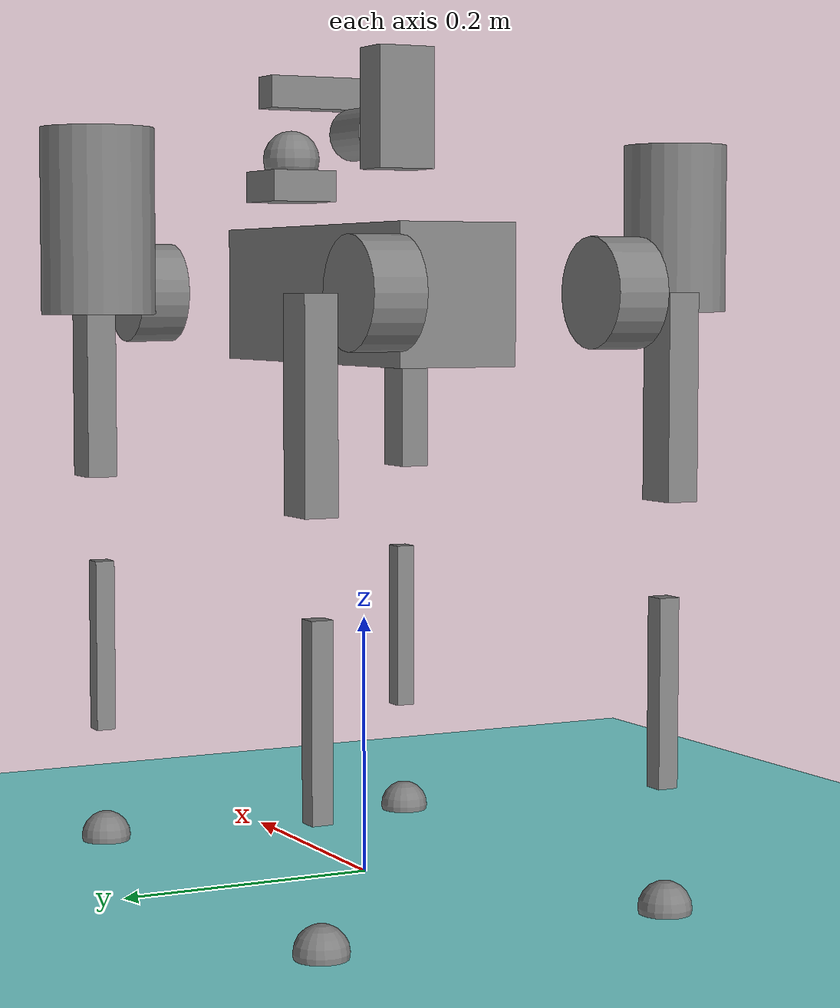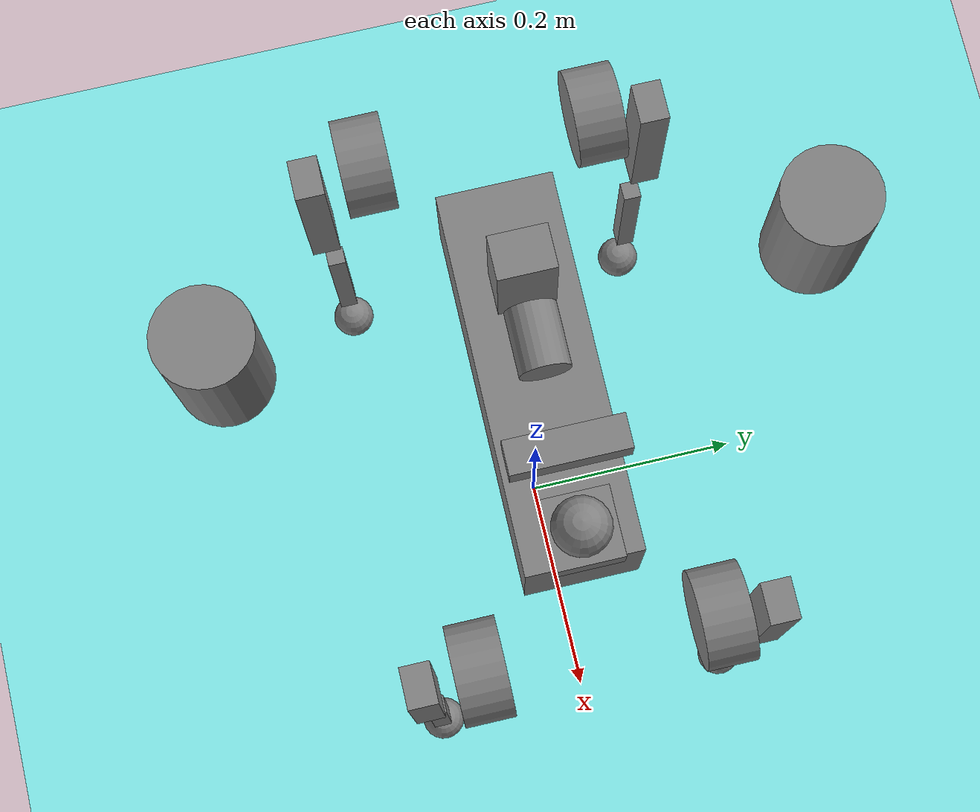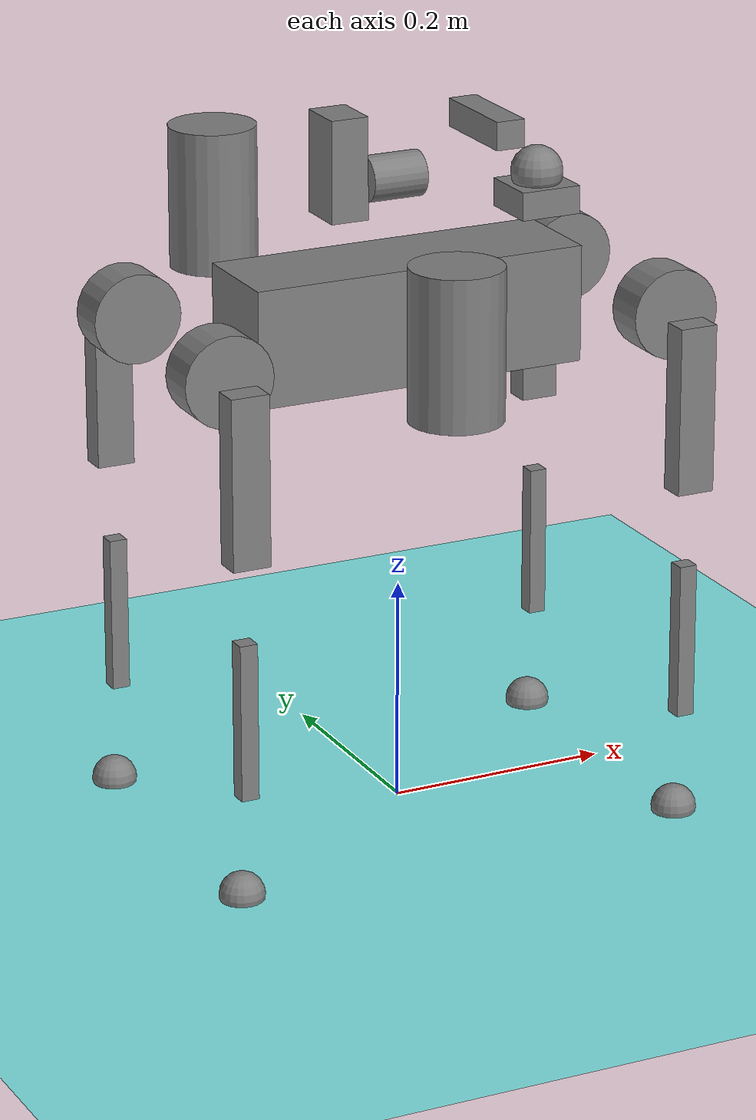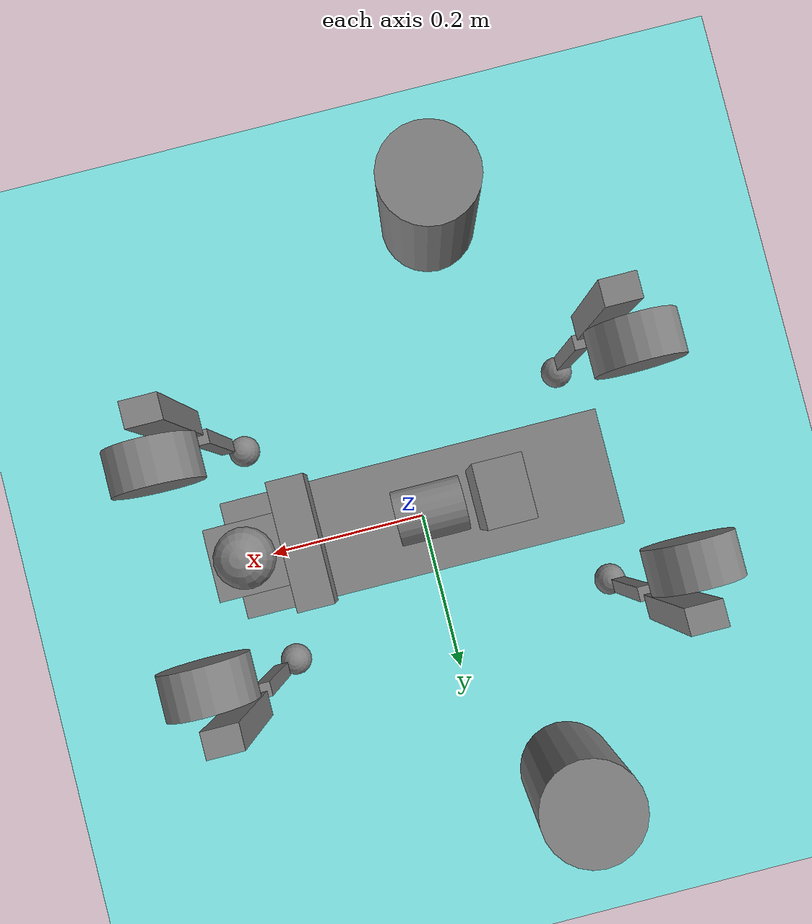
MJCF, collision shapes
<?xml version="1.0" ?>
<mujoco model="dog_t">
  <compiler angle="radian" meshdir="../meshes/"/>
  <size njmax="500" nconmax="100"/>
  <option gravity="0 0 -9.806" iterations="50" solver="Newton" timestep="0.005"/>
  <default>
    <geom contype="1" conaffinity="1" friction="0.6 0.3 0.3" margin="0.001" group="0"/>
    <light castshadow="false" diffuse="1 1 1"/>
    <joint damping="0.01" armature="0.01" frictionloss="0.2"/>
    <camera fovy="60"/>
  </default>
  <asset>
    <texture type="skybox" builtin="gradient" rgb1="1.0 1.0 1.0" rgb2="0.6 0.8 1.0" width="512" height="512"/>
    <texture name="plane" type="2d" builtin="flat" rgb1="1 1 1" rgb2="1 1 1" width="512" height="512" mark="cross" markrgb="0 0 0"/>
    <material name="plane" reflectance="0.0" texture="plane" texrepeat="3 3" texuniform="true"/>
    <mesh name="base" file="base.STL"/>
    <mesh name="imu" file="imu.STL"/>
    <mesh name="radar" file="radar.STL"/>
    <mesh name="camera" file="camera.STL"/>
    <mesh name="pump" file="pump.STL"/>
    <mesh name="FL_hip" file="FL_hip.STL"/>
    <mesh name="FL_thigh" file="FL_thigh.STL"/>
    <mesh name="FL_calf" file="FL_calf.STL"/>
    <mesh name="FL_foot" file="FL_foot.STL"/>
    <mesh name="FR_hip" file="FR_hip.STL"/>
    <mesh name="FR_thigh" file="FR_thigh.STL"/>
    <mesh name="FR_calf" file="FR_calf.STL"/>
    <mesh name="FR_foot" file="FR_foot.STL"/>
    <mesh name="RR_hip" file="RR_hip.STL"/>
    <mesh name="RR_thigh" file="RR_thigh.STL"/>
    <mesh name="RR_calf" file="RR_calf.STL"/>
    <mesh name="RR_foot" file="RR_foot.STL"/>
    <mesh name="RL_hip" file="RL_hip.STL"/>
    <mesh name="RL_thigh" file="RL_thigh.STL"/>
    <mesh name="RL_calf" file="RL_calf.STL"/>
    <mesh name="RL_foot" file="RL_foot.STL"/>
  </asset>
  <visual>
    <rgba com="0.502 1.0 0 0.5" contactforce="0.98 0.4 0.4 0.7" contactpoint="1.0 1.0 0.6 0.4"/>
    <scale com="0.2" forcewidth="0.035" contactwidth="0.10" contactheight="0.04"/>
  </visual>
  <worldbody>
    <light directional="true" diffuse=".8 .8 .8" pos="0 0 10" dir="0 0 -10"/>
    <camera name="track" mode="trackcom" pos="0 -1.3 1.6" xyaxes="1 0 0 0 0.707 0.707"/>
    <geom name="floor" type="plane" conaffinity="1" condim="3" contype="1" rgba="0.5 0.9 0.9 0.1" material="plane" pos="0 0 0" size="0 0 1"/>
    <body name="base" pos="0 0 0.45">
      <joint type="free"/>
      <inertial pos="-0.00291826 8.3099e-06 0.00190096" mass="5.0" diaginertia="0.008287596317455301 0.026002970244409212 0.030394342292371222"/>
      <geom type="mesh" mesh="base" contype="0" conaffinity="0" group="1" rgba="0.10196 0.10196 0.10196 1"/>
      <geom type="box" size="0.1531 0.04675 0.052" rgba="0.5 0.5 0.5 0"/>
      <body name="imu" pos="0.057561 -0.0015639 -0.045474">
        <inertial pos="-0.000268185 1.39561e-05 -4.63275e-07" mass="0.0103267107406631" diaginertia="1.20259330249884E-06 6.35828771011343E-07 1.69450816786057E-06"/>
        <geom type="mesh" mesh="imu" contype="0" conaffinity="0" group="1" rgba="0 0 1 1"/>
      </body>
      <body name="radar" pos="0.1335 0 0.12212">
        <inertial pos="1.98147e-05 0.000180551 -0.030189" mass="0.4" diaginertia="0.00013831122039981267 0.00012001440188189757 0.00021192430563791596"/>
        <geom type="mesh" mesh="radar" contype="0" conaffinity="0" group="1" rgba="0.69804 0.69804 0.69804 1"/>
        <geom type="box" size="0.0275 0.0275 0.0125" pos="0 0 -0.035" rgba="0.5 0.5 0.5 0"/>
        <geom type="sphere" size="0.023" pos="0 0 -0.013" rgba="0.5 0.5 0.5 0"/>
      </body>
      <body name="camera" pos="0.0839967 -0.000205832 0.16132">
        <inertial pos="-0.0027069 1.9846e-05 -0.0145675" mass="0.151728648619625" diaginertia="0.000162119144800329 7.72798730028196E-05 9.70134936308606E-05"/>
        <geom type="mesh" mesh="camera" contype="0" conaffinity="0" group="1" rgba="0.69804 0.69804 0.69804 1"/>
        <geom type="box" size="0.013 0.045 0.0125" pos="0 0 -0.003" rgba="0.5 0.5 0.5 0"/>
      </body>
      <body name="pump" pos="-0.026003 0 0.09732">
        <inertial pos="-0.017674 3.67607e-05 -0.0108755" mass="0.831139054175458" diaginertia="0.000397296302420083 0.000356958676570571 0.000457901643271839"/>
        <geom type="mesh" mesh="pump" contype="0" conaffinity="0" group="1" rgba="1 1 1 1"/>
        <geom type="cylinder" size="0.02 0.025" pos="0.02 0 0.025" quat="0.707105 0 0.707108 0" rgba="0.5 0.5 0.5 0"/>
        <geom type="box" size="0.017 0.0225 0.045" pos="-0.03 0 0.041" rgba="0.5 0.5 0.5 0"/>
        <geom type="cylinder" size="0.04 0.065" pos="-0.04 0.24 -0.046" quat="0.707105 0 0 0.707108" rgba="0.5 0.5 0.5 0"/>
        <geom type="cylinder" size="0.04 0.065" pos="-0.04 -0.24 -0.046" quat="0.707105 0 0 0.707108" rgba="0.5 0.5 0.5 0"/>
      </body>
      <body name="FL_hip" pos="0.208697 0.05025 0.00132006">
        <joint name="FL_hip_joint" pos="0 0 0" axis="-1 0 0" range="-1.05 1.05" actuatorfrcrange="-17.0 17.0"/>
        <inertial pos="-0.010697 -0.0033174 0" mass="0.33292" diaginertia="0.0001789 0.0003417 0.00025417"/>
        <geom type="mesh" mesh="FL_hip" contype="0" conaffinity="0" group="1" rgba="0.79216 0.81961 0.93333 1"/>
        <geom type="cylinder" size="0.04 0.02" pos="0 0.045 0" quat="0.707105 0.707108 0 0" rgba="0.5 0.5 0.5 0"/>
        <body name="FL_thigh" pos="0 0.093 0">
          <joint name="FL_thigh_joint" pos="0 0 0" axis="0 -1 0" range="-1.57 3.49" actuatorfrcrange="-17.0 17.0"/>
          <inertial pos="-0.0069171 -0.014196 -0.040905" mass="1.5467" diaginertia="0.0064369 0.0062486 0.0014778"/>
          <geom type="mesh" mesh="FL_thigh" contype="0" conaffinity="0" group="1" rgba="0.79216 0.81961 0.93333 1"/>
          <geom type="box" size="0.075 0.01225 0.017" pos="0 0 -0.075" quat="0.707105 0 0.707108 0" rgba="0.5 0.5 0.5 0"/>
          <body name="FL_calf" pos="0 -0.0045 -0.219999">
            <joint name="FL_calf_joint" pos="0 0 0" axis="0 1 0" range="-2.72 -1.2" actuatorfrcrange="-25.5 25.5"/>
            <inertial pos="0.012446 0 -0.11689" mass="0.1266" diaginertia="0.00089879 0.0009089 1.8028E-05"/>
            <geom type="mesh" mesh="FL_calf" contype="0" conaffinity="0" group="1" rgba="0.79216 0.81961 0.93333 1"/>
            <geom type="box" size="0.07 0.008 0.008" pos="0 0 -0.07" quat="0.707105 0 0.707108 0" rgba="0.5 0.5 0.5 0"/>
            <body name="FL_foot" pos="-0.00528282 0 -0.228226">
              <inertial pos="0 0 0" mass="0.03385" diaginertia="4.3616E-06 4.8375E-06 5.3891E-06"/>
              <geom type="mesh" mesh="FL_foot" contype="0" conaffinity="0" group="1" rgba="0.69804 0.69804 0.69804 1"/>
              <geom type="sphere" size="0.02" rgba="0.5 0.5 0.5 0"/>
            </body>
          </body>
        </body>
      </body>
      <body name="FR_hip" pos="0.208697 -0.05025 0.00132006">
        <joint name="FR_hip_joint" pos="0 0 0" axis="-1 0 0" range="-1.05 1.05" actuatorfrcrange="-17.0 17.0"/>
        <inertial pos="-0.010697 0.0033174 0" mass="0.33292" diaginertia="0.0001789 0.0003417 0.00025417"/>
        <geom type="mesh" mesh="FR_hip" contype="0" conaffinity="0" group="1" rgba="0.79216 0.81961 0.93333 1"/>
        <geom type="cylinder" size="0.04 0.02" pos="0 -0.045 0" quat="0.707105 0.707108 0 0" rgba="0.5 0.5 0.5 0"/>
        <body name="FR_thigh" pos="0 -0.093 0">
          <joint name="FR_thigh_joint" pos="0 0 0" axis="0 1 0" range="-1.57 3.49" actuatorfrcrange="-17.0 17.0"/>
          <inertial pos="-0.0069171 0.014196 -0.040905" mass="1.5467" diaginertia="0.0064369 0.0062486 0.0014778"/>
          <geom type="mesh" mesh="FR_thigh" contype="0" conaffinity="0" group="1" pos="0 0.093 0" rgba="0.79216 0.81961 0.93333 1"/>
          <geom type="box" size="0.075 0.01225 0.017" pos="0 0 -0.075" quat="0.707105 0 0.707108 0" rgba="0.5 0.5 0.5 0"/>
          <body name="FR_calf" pos="0 0.0045 -0.22">
            <joint name="FR_calf_joint" pos="0 0 0" axis="0 -1 0" range="1.2 2.72" actuatorfrcrange="-25.5 25.5"/>
            <inertial pos="0.012446 0 -0.11689" mass="0.1266" diaginertia="0.00089879 0.0009089 1.8028E-05"/>
            <geom type="mesh" mesh="FR_calf" contype="0" conaffinity="0" group="1" rgba="0.79216 0.81961 0.93333 1"/>
            <geom type="box" size="0.07 0.008 0.008" pos="0 0 -0.07" quat="0.707105 0 0.707108 0" rgba="0.5 0.5 0.5 0"/>
            <body name="FR_foot" pos="-0.00528282 0 -0.228226">
              <inertial pos="0 0 0" mass="0.03385" diaginertia="4.3616E-06 4.8375E-06 5.3891E-06"/>
              <geom type="mesh" mesh="FR_foot" contype="0" conaffinity="0" group="1" rgba="0.69804 0.69804 0.69804 1"/>
              <geom type="sphere" size="0.02" rgba="0.5 0.5 0.5 0"/>
            </body>
          </body>
        </body>
      </body>
      <body name="RR_hip" pos="-0.210103 -0.05025 0.00132006">
        <joint name="RR_hip_joint" pos="0 0 0" axis="1 0 0" range="-1.05 1.05" actuatorfrcrange="-17.0 17.0"/>
        <inertial pos="0.010697 0.0033174 0" mass="0.33292" diaginertia="0.0001789 0.0003417 0.00025417"/>
        <geom type="mesh" mesh="RR_hip" contype="0" conaffinity="0" group="1" rgba="0.79216 0.81961 0.93333 1"/>
        <geom type="cylinder" size="0.04 0.02" pos="0 -0.045 0" quat="0.707105 0.707108 0 0" rgba="0.5 0.5 0.5 0"/>
        <body name="RR_thigh" pos="0 -0.093 0">
          <joint name="RR_thigh_joint" pos="0 0 0" axis="0 1 0" range="-1.57 3.49" actuatorfrcrange="-17.0 17.0"/>
          <inertial pos="-0.0069171 0.014196 -0.040905" mass="1.5467" diaginertia="0.0064369 0.0062486 0.0014778"/>
          <geom type="mesh" mesh="RR_thigh" contype="0" conaffinity="0" group="1" rgba="0.79216 0.81961 0.93333 1"/>
          <geom type="box" size="0.075 0.01225 0.017" pos="0 0 -0.075" quat="0.707105 0 0.707108 0" rgba="0.5 0.5 0.5 0"/>
          <body name="RR_calf" pos="0 0.0045 -0.219998">
            <joint name="RR_calf_joint" pos="0 0 0" axis="0 -1 0" range="1.2 2.72" actuatorfrcrange="-25.5 25.5"/>
            <inertial pos="0.012446 0 -0.11689" mass="0.1266" diaginertia="0.00089879 0.0009089 1.8028E-05"/>
            <geom type="mesh" mesh="RR_calf" contype="0" conaffinity="0" group="1" rgba="0.79216 0.81961 0.93333 1"/>
            <geom type="box" size="0.07 0.008 0.008" pos="0 0 -0.07" quat="0.707105 0 0.707108 0" rgba="0.5 0.5 0.5 0"/>
            <body name="RR_foot" pos="-0.00528282 0 -0.228226">
              <inertial pos="0 0 0" mass="0.03385" diaginertia="4.3616E-06 4.8375E-06 5.3891E-06"/>
              <geom type="mesh" mesh="RR_foot" contype="0" conaffinity="0" group="1" rgba="0.69804 0.69804 0.69804 1"/>
              <geom type="sphere" size="0.02" rgba="0.5 0.5 0.5 0"/>
            </body>
          </body>
        </body>
      </body>
      <body name="RL_hip" pos="-0.2101 0.05025 0.0013201">
        <joint name="RL_hip_joint" pos="0 0 0" axis="1 0 0" range="-1.05 1.05" actuatorfrcrange="-17.0 17.0"/>
        <inertial pos="0.010697 -0.0033174 0" mass="0.33292" diaginertia="0.0001789 0.0003417 0.00025417"/>
        <geom type="mesh" mesh="RL_hip" contype="0" conaffinity="0" group="1" rgba="0.79216 0.81961 0.93333 1"/>
        <geom type="cylinder" size="0.04 0.02" pos="0 0.045 0" quat="0.707105 0.707108 0 0" rgba="0.5 0.5 0.5 0"/>
        <body name="RL_thigh" pos="0 0.093 0">
          <joint name="RL_thigh_joint" pos="0 0 0" axis="0 -1 0" range="-1.57 3.49" actuatorfrcrange="-17.0 17.0"/>
          <inertial pos="-0.0069171 -0.014196 -0.040905" mass="1.5467" diaginertia="0.0064369 0.0062486 0.0014778"/>
          <geom type="mesh" mesh="RL_thigh" contype="0" conaffinity="0" group="1" rgba="0.79216 0.81961 0.93333 1"/>
          <geom type="box" size="0.075 0.01225 0.017" pos="0 0 -0.075" quat="0.707105 0 0.707108 0" rgba="0.5 0.5 0.5 0"/>
          <body name="RL_calf" pos="0 -0.0045 -0.22">
            <joint name="RL_calf_joint" pos="0 0 0" axis="0 1 0" range="-2.72 -1.2" actuatorfrcrange="-25.5 25.5"/>
            <inertial pos="0.012446 0 -0.11689" mass="0.1266" diaginertia="0.00089879 0.0009089 1.8028E-05"/>
            <geom type="mesh" mesh="RL_calf" contype="0" conaffinity="0" group="1" rgba="0.79216 0.81961 0.93333 1"/>
            <geom type="box" size="0.07 0.008 0.008" pos="0 0 -0.07" quat="0.707105 0 0.707108 0" rgba="0.5 0.5 0.5 0"/>
            <body name="RL_foot" pos="-0.0052828 0 -0.22823">
              <inertial pos="-5.3573e-06 0 0" mass="0.03385" diaginertia="4.3616E-06 4.8375E-06 5.3891E-06"/>
              <geom type="mesh" mesh="RL_foot" contype="0" conaffinity="0" group="1" rgba="0.69804 0.69804 0.69804 1"/>
              <geom type="sphere" size="0.02" rgba="0.5 0.5 0.5 0"/>
            </body>
          </body>
        </body>
      </body>
      <site name="imu" pos="0 0 0"/>
    </body>
  </worldbody>
  <actuator>
    <motor name="FL_hip" gear="1" joint="FL_hip_joint" ctrlrange="-17.0 17.0" ctrllimited="true"/>
    <motor name="FL_thigh" gear="1" joint="FL_thigh_joint" ctrlrange="-17.0 17.0" ctrllimited="true"/>
    <motor name="FL_calf" gear="1" joint="FL_calf_joint" ctrlrange="-25.5 25.5" ctrllimited="true"/>
    <motor name="FR_hip" gear="1" joint="FR_hip_joint" ctrlrange="-17.0 17.0" ctrllimited="true"/>
    <motor name="FR_thigh" gear="1" joint="FR_thigh_joint" ctrlrange="-17.0 17.0" ctrllimited="true"/>
    <motor name="FR_calf" gear="1" joint="FR_calf_joint" ctrlrange="-25.5 25.5" ctrllimited="true"/>
    <motor name="RR_hip" gear="1" joint="RR_hip_joint" ctrlrange="-17.0 17.0" ctrllimited="true"/>
    <motor name="RR_thigh" gear="1" joint="RR_thigh_joint" ctrlrange="-17.0 17.0" ctrllimited="true"/>
    <motor name="RR_calf" gear="1" joint="RR_calf_joint" ctrlrange="-25.5 25.5" ctrllimited="true"/>
    <motor name="RL_hip" gear="1" joint="RL_hip_joint" ctrlrange="-17.0 17.0" ctrllimited="true"/>
    <motor name="RL_thigh" gear="1" joint="RL_thigh_joint" ctrlrange="-17.0 17.0" ctrllimited="true"/>
    <motor name="RL_calf" gear="1" joint="RL_calf_joint" ctrlrange="-25.5 25.5" ctrllimited="true"/>
  </actuator>
  <sensor>
    <jointpos name="FL_hip_pos" joint="FL_hip_joint"/>
    <jointpos name="FL_thigh_pos" joint="FL_thigh_joint"/>
    <jointpos name="FL_calf_pos" joint="FL_calf_joint"/>
    <jointpos name="FR_hip_pos" joint="FR_hip_joint"/>
    <jointpos name="FR_thigh_pos" joint="FR_thigh_joint"/>
    <jointpos name="FR_calf_pos" joint="FR_calf_joint"/>
    <jointpos name="RR_hip_pos" joint="RR_hip_joint"/>
    <jointpos name="RR_thigh_pos" joint="RR_thigh_joint"/>
    <jointpos name="RR_calf_pos" joint="RR_calf_joint"/>
    <jointpos name="RL_hip_pos" joint="RL_hip_joint"/>
    <jointpos name="RL_thigh_pos" joint="RL_thigh_joint"/>
    <jointpos name="RL_calf_pos" joint="RL_calf_joint"/>
    <jointvel name="FL_hip_vel" joint="FL_hip_joint"/>
    <jointvel name="FL_thigh_vel" joint="FL_thigh_joint"/>
    <jointvel name="FL_calf_vel" joint="FL_calf_joint"/>
    <jointvel name="FR_hip_vel" joint="FR_hip_joint"/>
    <jointvel name="FR_thigh_vel" joint="FR_thigh_joint"/>
    <jointvel name="FR_calf_vel" joint="FR_calf_joint"/>
    <jointvel name="RR_hip_vel" joint="RR_hip_joint"/>
    <jointvel name="RR_thigh_vel" joint="RR_thigh_joint"/>
    <jointvel name="RR_calf_vel" joint="RR_calf_joint"/>
    <jointvel name="RL_hip_vel" joint="RL_hip_joint"/>
    <jointvel name="RL_thigh_vel" joint="RL_thigh_joint"/>
    <jointvel name="RL_calf_vel" joint="RL_calf_joint"/>
    <accelerometer name="Body_Acc" site="imu"/>
    <gyro name="Body_Gyro" site="imu"/>
    <framepos name="Body_Pos" objtype="site" objname="imu"/>
    <framequat name="Body_Quat" objtype="site" objname="imu"/>
  </sensor>
</mujoco>
